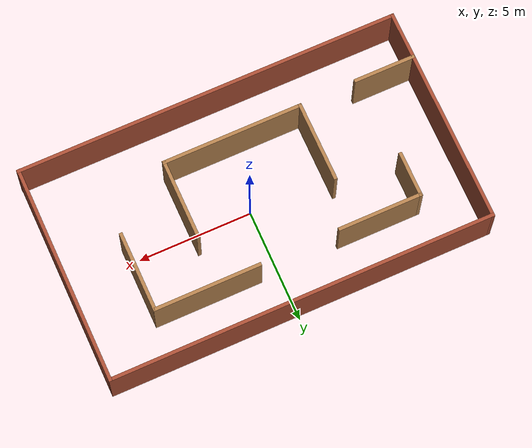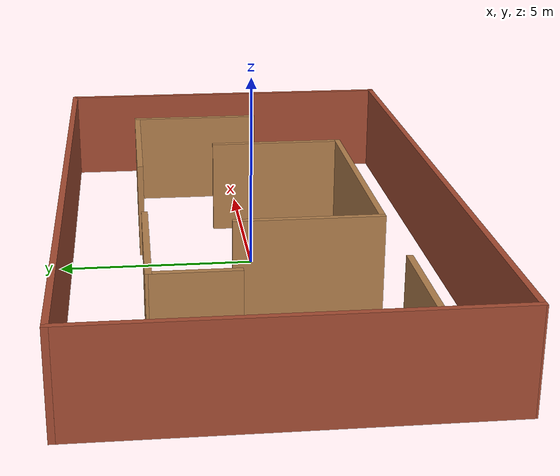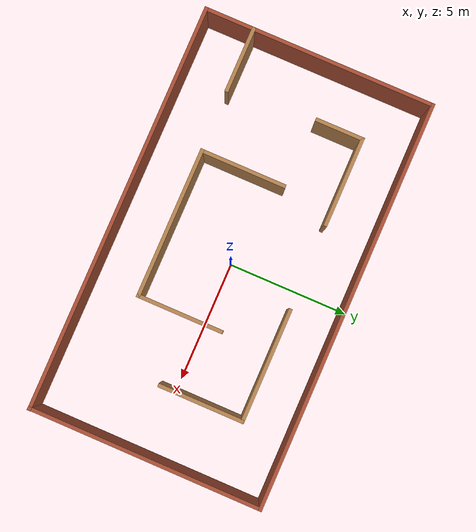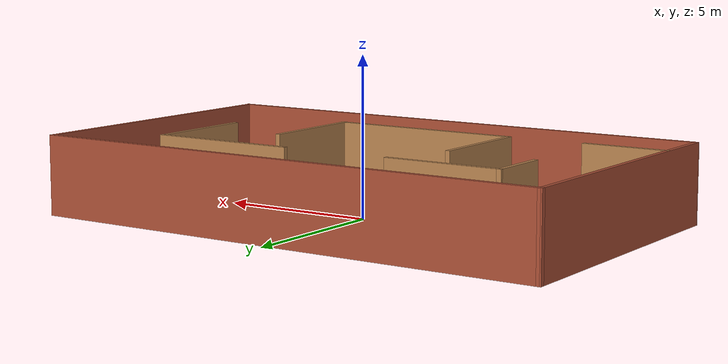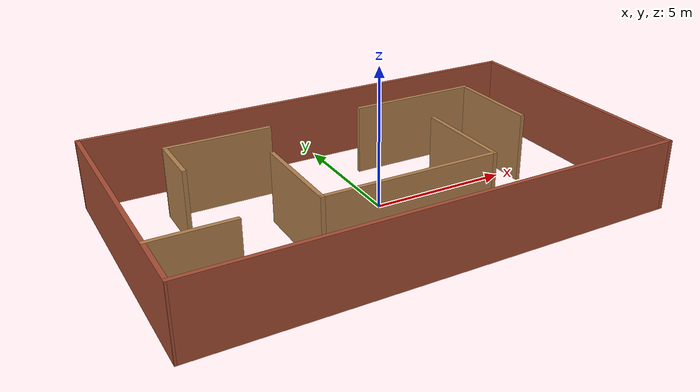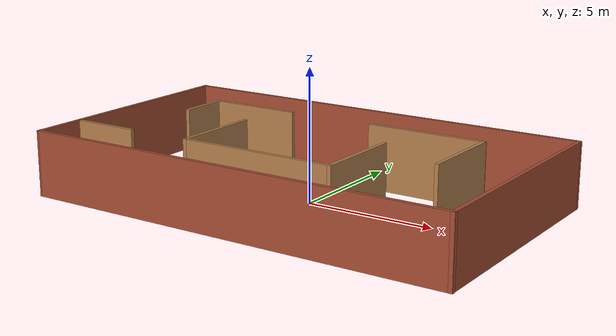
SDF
<?xml version='1.0'?>
<sdf version='1.7'>
  <model name='maze_room'>
    <pose>-0.219628 -0.007171 0 0 -0 0</pose>
    <link name='Wall_31'>
      <collision name='Wall_31_Collision'>
        <geometry>
          <box>
            <size>9.716 0.15 2.5</size>
          </box>
        </geometry>
        <pose>0 0 1.25 0 -0 0</pose>
      </collision>
      <visual name='Wall_31_Visual'>
        <pose>0 0 1.25 0 -0 0</pose>
        <geometry>
          <box>
            <size>9.716 0.15 2.5</size>
          </box>
        </geometry>
        <material>
          <script>
            <uri>file://media/materials/scripts/gazebo.material</uri>
            <name>Gazebo/Bricks</name>
          </script>
          <ambient>1 1 1 1</ambient>
        </material>
        <meta>
          <layer>0</layer>
        </meta>
      </visual>
      <pose>8.41563 -0.001932 0 0 -0 1.5708</pose>
    </link>
    <link name='Wall_32'>
      <collision name='Wall_32_Collision'>
        <geometry>
          <box>
            <size>16.9939 0.15 2.5</size>
          </box>
        </geometry>
        <pose>0 0 1.25 0 -0 0</pose>
      </collision>
      <visual name='Wall_32_Visual'>
        <pose>0 0 1.25 0 -0 0</pose>
        <geometry>
          <box>
            <size>16.9939 0.15 2.5</size>
          </box>
        </geometry>
        <material>
          <script>
            <uri>file://media/materials/scripts/gazebo.material</uri>
            <name>Gazebo/Bricks</name>
          </script>
          <ambient>1 1 1 1</ambient>
        </material>
        <meta>
          <layer>0</layer>
        </meta>
      </visual>
      <pose>-0.006274 4.78298 0 0 -0 3.14137</pose>
    </link>
    <link name='Wall_33'>
      <collision name='Wall_33_Collision'>
        <geometry>
          <box>
            <size>9.71632 0.15 2.5</size>
          </box>
        </geometry>
        <pose>0 0 1.25 0 -0 0</pose>
      </collision>
      <visual name='Wall_33_Visual'>
        <pose>0 0 1.25 0 -0 0</pose>
        <geometry>
          <box>
            <size>9.71632 0.15 2.5</size>
          </box>
        </geometry>
        <material>
          <script>
            <uri>file://media/materials/scripts/gazebo.material</uri>
            <name>Gazebo/Bricks</name>
          </script>
          <ambient>1 1 1 1</ambient>
        </material>
        <meta>
          <layer>0</layer>
        </meta>
      </visual>
      <pose>-8.42497 0.00172 0 0 -0 -1.57013</pose>
    </link>
    <link name='Wall_34'>
      <collision name='Wall_34_Collision'>
        <geometry>
          <box>
            <size>17 0.15 2.5</size>
          </box>
        </geometry>
        <pose>0 0 1.25 0 -0 0</pose>
      </collision>
      <visual name='Wall_34_Visual'>
        <pose>0 0 1.25 0 -0 0</pose>
        <geometry>
          <box>
            <size>17 0.15 2.5</size>
          </box>
        </geometry>
        <material>
          <script>
            <uri>file://media/materials/scripts/gazebo.material</uri>
            <name>Gazebo/Bricks</name>
          </script>
          <ambient>1 1 1 1</ambient>
        </material>
        <meta>
          <layer>0</layer>
        </meta>
      </visual>
      <pose>0.003236 -4.78144 0 0 -0 0</pose>
    </link>
    <link name='Wall_36'>
      <collision name='Wall_36_Collision'>
        <geometry>
          <box>
            <size>2.0469 0.15 2.5</size>
          </box>
        </geometry>
        <pose>0 0 1.25 0 -0 0</pose>
      </collision>
      <visual name='Wall_36_Visual'>
        <pose>0 0 1.25 0 -0 0</pose>
        <geometry>
          <box>
            <size>2.0469 0.15 2.5</size>
          </box>
        </geometry>
        <material>
          <script>
            <uri>file://media/materials/scripts/gazebo.material</uri>
            <name>Gazebo/Wood</name>
          </script>
          <ambient>1 1 1 1</ambient>
        </material>
        <meta>
          <layer>0</layer>
        </meta>
      </visual>
      <pose>-6.12648 1.85616 0 0 -0 1.5702</pose>
    </link>
    <link name='Wall_37'>
      <collision name='Wall_37_Collision'>
        <geometry>
          <box>
            <size>3.75 0.15 2.5</size>
          </box>
        </geometry>
        <pose>0 0 1.25 0 -0 0</pose>
      </collision>
      <visual name='Wall_37_Visual'>
        <pose>0 0 1.25 0 -0 0</pose>
        <geometry>
          <box>
            <size>3.75 0.15 2.5</size>
          </box>
        </geometry>
        <material>
          <script>
            <uri>file://media/materials/scripts/gazebo.material</uri>
            <name>Gazebo/Wood</name>
          </script>
          <ambient>1 1 1 1</ambient>
        </material>
        <meta>
          <layer>0</layer>
        </meta>
      </visual>
      <pose>-4.32591 2.8044 0 0 -0 0</pose>
    </link>
    <link name='Wall_39'>
      <collision name='Wall_39_Collision'>
        <geometry>
          <box>
            <size>3.59364 0.15 2.5</size>
          </box>
        </geometry>
        <pose>0 0 1.25 0 -0 0</pose>
      </collision>
      <visual name='Wall_39_Visual'>
        <pose>0 0 1.25 0 -0 0</pose>
        <geometry>
          <box>
            <size>3.59364 0.15 2.5</size>
          </box>
        </geometry>
        <material>
          <script>
            <uri>file://media/materials/scripts/gazebo.material</uri>
            <name>Gazebo/Wood</name>
          </script>
          <ambient>1 1 1 1</ambient>
        </material>
        <meta>
          <layer>0</layer>
        </meta>
      </visual>
      <pose>-3.25289 -0.989542 0 0 -0 -1.5708</pose>
    </link>
    <link name='Wall_40'>
      <collision name='Wall_40_Collision'>
        <geometry>
          <box>
            <size>6.25 0.15 2.5</size>
          </box>
        </geometry>
        <pose>0 0 1.25 0 -0 0</pose>
      </collision>
      <visual name='Wall_40_Visual'>
        <pose>0 0 1.25 0 -0 0</pose>
        <geometry>
          <box>
            <size>6.25 0.15 2.5</size>
          </box>
        </geometry>
        <material>
          <script>
            <uri>file://media/materials/scripts/gazebo.material</uri>
            <name>Gazebo/Wood</name>
          </script>
          <ambient>1 1 1 1</ambient>
        </material>
        <meta>
          <layer>0</layer>
        </meta>
      </visual>
      <pose>-0.202892 -2.71103 0 0 -0 0</pose>
    </link>
    <link name='Wall_41'>
      <collision name='Wall_41_Collision'>
        <geometry>
          <box>
            <size>3.59364 0.15 2.5</size>
          </box>
        </geometry>
        <pose>0 0 1.25 0 -0 0</pose>
      </collision>
      <visual name='Wall_41_Visual'>
        <pose>0 0 1.25 0 -0 0</pose>
        <geometry>
          <box>
            <size>3.59364 0.15 2.5</size>
          </box>
        </geometry>
        <material>
          <script>
            <uri>file://media/materials/scripts/gazebo.material</uri>
            <name>Gazebo/Wood</name>
          </script>
          <ambient>1 1 1 1</ambient>
        </material>
        <meta>
          <layer>0</layer>
        </meta>
      </visual>
      <pose>2.84711 -0.989542 0 0 -0 1.5708</pose>
    </link>
    <link name='Wall_43'>
      <collision name='Wall_43_Collision'>
        <geometry>
          <box>
            <size>4.75 0.15 2.5</size>
          </box>
        </geometry>
        <pose>0 0 1.25 0 -0 0</pose>
      </collision>
      <visual name='Wall_43_Visual'>
        <pose>0 0 1.25 0 -0 0</pose>
        <geometry>
          <box>
            <size>4.75 0.15 2.5</size>
          </box>
        </geometry>
        <material>
          <script>
            <uri>file://media/materials/scripts/gazebo.material</uri>
            <name>Gazebo/Wood</name>
          </script>
          <ambient>1 1 1 1</ambient>
        </material>
        <meta>
          <layer>0</layer>
        </meta>
      </visual>
      <pose>3.35834 2.84994 0 0 -0 0</pose>
    </link>
    <link name='Wall_44'>
      <collision name='Wall_44_Collision'>
        <geometry>
          <box>
            <size>3.54649 0.15 2.5</size>
          </box>
        </geometry>
        <pose>0 0 1.25 0 -0 0</pose>
      </collision>
      <visual name='Wall_44_Visual'>
        <pose>0 0 1.25 0 -0 0</pose>
        <geometry>
          <box>
            <size>3.54649 0.15 2.5</size>
          </box>
        </geometry>
        <material>
          <script>
            <uri>file://media/materials/scripts/gazebo.material</uri>
            <name>Gazebo/Wood</name>
          </script>
          <ambient>1 1 1 1</ambient>
        </material>
        <meta>
          <layer>0</layer>
        </meta>
      </visual>
      <pose>5.65834 1.11778 0 0 -0 -1.5708</pose>
    </link>
    <link name='Wall_46'>
      <collision name='Wall_46_Collision'>
        <geometry>
          <box>
            <size>2.75 0.15 2.5</size>
          </box>
        </geometry>
        <pose>0 0 1.25 0 -0 0</pose>
      </collision>
      <visual name='Wall_46_Visual'>
        <pose>0 0 1.25 0 -0 0</pose>
        <geometry>
          <box>
            <size>2.75 0.15 2.5</size>
          </box>
        </geometry>
        <material>
          <script>
            <uri>file://media/materials/scripts/gazebo.material</uri>
            <name>Gazebo/Wood</name>
          </script>
          <ambient>1 1 1 1</ambient>
        </material>
        <meta>
          <layer>0</layer>
        </meta>
      </visual>
      <pose>-7.10957 -2.76538 0 0 -0 0</pose>
    </link>
    <static>1</static>
  </model>
</sdf>
